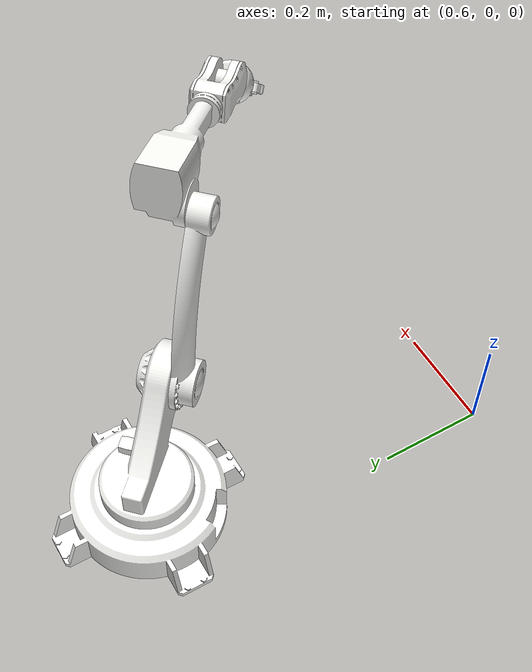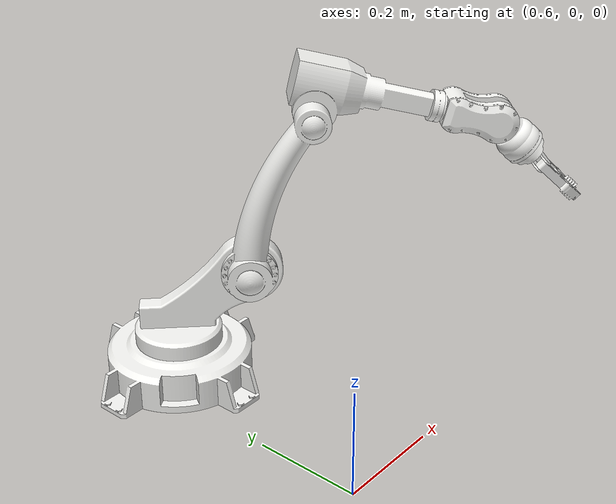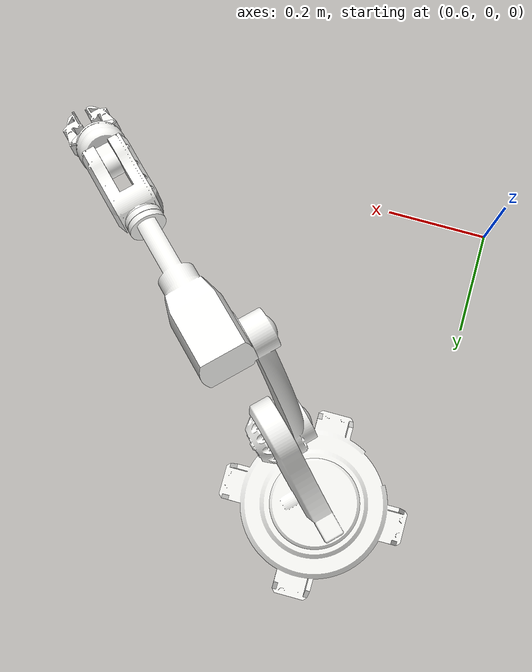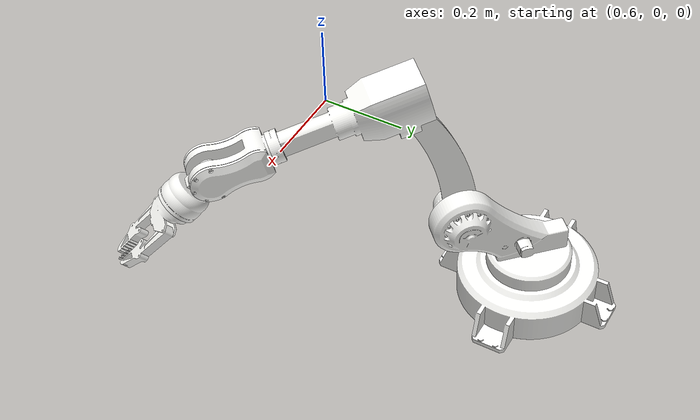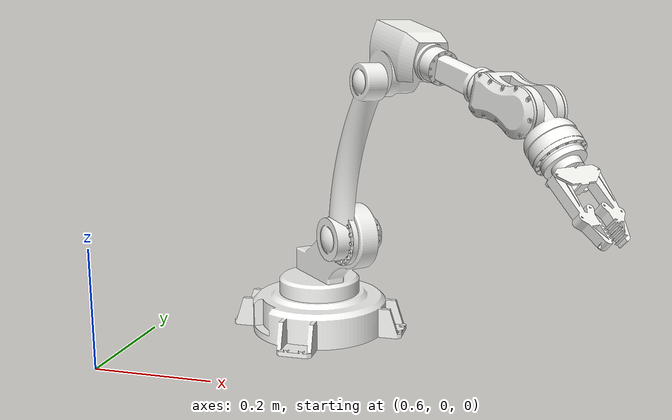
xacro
<?xml version="1.0"?>
<robot xmlns:xacro="http://www.ros.org/wiki/xacro" name="robotic_arm">

  <!-- Materials (shared across all assemblies) -->
  <material name="ABS_Plastic">
    <color rgba="0.965 0.965 0.953 1.0"/>
  </material>

  <!-- Assembly includes -->
  <xacro:include filename="$(find robotic_arm_description)/urdf/assemblies/robotic_arm.urdf.xacro"/>

  <!-- Instantiate assemblies -->
  <xacro:robotic_arm prefix=""/>

</robot>

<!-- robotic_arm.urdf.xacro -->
<robot xmlns:xacro="http://www.ros.org/wiki/xacro" name="robotic_arm_macro">

  <xacro:macro name="robotic_arm" params="prefix">

    <!-- Links -->
    <link name="${prefix}base_link">
      <inertial>
        <origin xyz="0.795447 0.614307 -0.087295" rpy="0 0 0"/>
        <mass value="6.119698"/>
        <inertia ixx="3.870592e-02" ixy="8.476438e-04" ixz="-4.377918e-05"
                 iyy="3.870592e-02" iyz="-4.377918e-05" izz="7.067362e-02"/>
      </inertial>
      <visual>
        <origin xyz="0.000000 0.000000 0.000000" rpy="0 0 0"/>
        <geometry>
          <mesh filename="package://robotic_arm_description/meshes/robotic_arm/base_link.dae" scale="1 1 1"/>
        </geometry>
        <material name="ABS_Plastic"/>
      </visual>
      <collision>
        <origin xyz="0.000000 0.000000 0.000000" rpy="0 0 0"/>
        <geometry>
          <mesh filename="package://robotic_arm_description/meshes/robotic_arm/base_link_collision.stl" scale="0.01 0.01 0.01"/>
        </geometry>
      </collision>
    </link>

    <link name="${prefix}JAW">
      <inertial>
        <origin xyz="0.059058 0.084791 -0.003955" rpy="0 0 0"/>
        <mass value="2.532640"/>
        <inertia ixx="1.314744e-02" ixy="-1.001874e-02" ixz="6.590987e-04"
                 iyy="1.786158e-02" iyz="5.945330e-04" izz="2.615029e-02"/>
      </inertial>
      <visual>
        <origin xyz="-0.418682 -0.888702 -0.224715" rpy="0 0 0"/>
        <geometry>
          <mesh filename="package://robotic_arm_description/meshes/robotic_arm/JAW.dae" scale="1 1 1"/>
        </geometry>
        <material name="ABS_Plastic"/>
      </visual>
      <collision>
        <origin xyz="-0.418682 -0.888702 -0.224715" rpy="0 0 0"/>
        <geometry>
          <mesh filename="package://robotic_arm_description/meshes/robotic_arm/JAW_collision.stl" scale="0.01 0.01 0.01"/>
        </geometry>
      </collision>
    </link>

    <link name="${prefix}JAW_2">
      <inertial>
        <origin xyz="-0.147018 -0.011210 0.016599" rpy="0 0 0"/>
        <mass value="1.025094"/>
        <inertia ixx="7.003861e-04" ixy="-2.973266e-04" ixz="-1.025022e-05"
                 iyy="1.951474e-02" iyz="-2.693467e-05" izz="1.990601e-02"/>
      </inertial>
      <visual>
        <origin xyz="-1.200000 -0.000000 -0.000000" rpy="0 0 0"/>
        <geometry>
          <mesh filename="package://robotic_arm_description/meshes/robotic_arm/JAW_2.dae" scale="1 1 1"/>
        </geometry>
        <material name="ABS_Plastic"/>
      </visual>
      <collision>
        <origin xyz="-1.200000 -0.000000 -0.000000" rpy="0 0 0"/>
        <geometry>
          <mesh filename="package://robotic_arm_description/meshes/robotic_arm/JAW_2_collision.stl" scale="0.01 0.01 0.01"/>
        </geometry>
      </collision>
    </link>

    <link name="${prefix}JAW_3">
      <inertial>
        <origin xyz="0.046361 -0.044012 0.039243" rpy="0 0 0"/>
        <mass value="1.538177"/>
        <inertia ixx="9.058945e-03" ixy="1.109815e-04" ixz="-1.328284e-04"
                 iyy="2.055125e-03" iyz="3.897745e-04" izz="8.638996e-03"/>
      </inertial>
      <visual>
        <origin xyz="0.048000 -0.650000 0.045000" rpy="0 0 0"/>
        <geometry>
          <mesh filename="package://robotic_arm_description/meshes/robotic_arm/JAW_3.dae" scale="1 1 1"/>
        </geometry>
        <material name="ABS_Plastic"/>
      </visual>
      <collision>
        <origin xyz="0.048000 -0.650000 0.045000" rpy="0 0 0"/>
        <geometry>
          <mesh filename="package://robotic_arm_description/meshes/robotic_arm/JAW_3_collision.stl" scale="0.01 0.01 0.01"/>
        </geometry>
      </collision>
    </link>

    <link name="${prefix}JAW_4">
      <inertial>
        <origin xyz="-0.000029 0.069514 -0.000000" rpy="0 0 0"/>
        <mass value="0.617822"/>
        <inertia ixx="1.472032e-03" ixy="-3.575882e-07" ixz="-5.823409e-11"
                 iyy="6.025998e-04" iyz="-2.335244e-09" izz="1.633041e-03"/>
      </inertial>
      <visual>
        <origin xyz="-0.500000 0.000000 0.000000" rpy="0 0 0"/>
        <geometry>
          <mesh filename="package://robotic_arm_description/meshes/robotic_arm/JAW_4.dae" scale="1 1 1"/>
        </geometry>
        <material name="ABS_Plastic"/>
      </visual>
      <collision>
        <origin xyz="-0.500000 0.000000 0.000000" rpy="0 0 0"/>
        <geometry>
          <mesh filename="package://robotic_arm_description/meshes/robotic_arm/JAW_4_collision.stl" scale="0.01 0.01 0.01"/>
        </geometry>
      </collision>
    </link>

    <link name="${prefix}JAW_5">
      <inertial>
        <origin xyz="0.058831 0.021840 -0.000000" rpy="0 0 0"/>
        <mass value="0.354722"/>
        <inertia ixx="2.554987e-04" ixy="-3.330502e-06" ixz="-4.770490e-18"
                 iyy="3.739993e-04" iyz="-6.572976e-19" izz="3.704189e-04"/>
      </inertial>
      <visual>
        <origin xyz="0.042000 0.022000 -0.600000" rpy="0 0 0"/>
        <geometry>
          <mesh filename="package://robotic_arm_description/meshes/robotic_arm/JAW_5.dae" scale="1 1 1"/>
        </geometry>
        <material name="ABS_Plastic"/>
      </visual>
      <collision>
        <origin xyz="0.042000 0.022000 -0.600000" rpy="0 0 0"/>
        <geometry>
          <mesh filename="package://robotic_arm_description/meshes/robotic_arm/JAW_5_collision.stl" scale="0.01 0.01 0.01"/>
        </geometry>
      </collision>
    </link>

    <link name="${prefix}JAW_6">
      <inertial>
        <origin xyz="0.000000 0.016350 0.000000" rpy="0 0 0"/>
        <mass value="0.081068"/>
        <inertia ixx="3.412891e-05" ixy="2.168046e-15" ixz="4.820322e-20"
                 iyy="4.256513e-05" iyz="-8.224378e-21" izz="4.058668e-05"/>
      </inertial>
      <visual>
        <origin xyz="0.000000 0.000000 0.000000" rpy="0 0 0"/>
        <geometry>
          <mesh filename="package://robotic_arm_description/meshes/robotic_arm/JAW_6.dae" scale="1 1 1"/>
        </geometry>
        <material name="ABS_Plastic"/>
      </visual>
      <collision>
        <origin xyz="0.000000 0.000000 0.000000" rpy="0 0 0"/>
        <geometry>
          <mesh filename="package://robotic_arm_description/meshes/robotic_arm/JAW_6_collision.stl" scale="0.01 0.01 0.01"/>
        </geometry>
      </collision>
    </link>

    <link name="${prefix}JAW_7">
      <inertial>
        <origin xyz="0.008937 0.012769 -0.052878" rpy="0 0 0"/>
        <mass value="0.041524"/>
        <inertia ixx="4.990394e-05" ixy="5.252600e-08" ixz="-1.089245e-07"
                 iyy="4.782931e-05" iyz="6.734330e-06" izz="4.334183e-06"/>
      </inertial>
      <visual>
        <origin xyz="0.009000 -0.014591 0.102853" rpy="0 0 0"/>
        <geometry>
          <mesh filename="package://robotic_arm_description/meshes/robotic_arm/JAW_7.dae" scale="1 1 1"/>
        </geometry>
        <material name="ABS_Plastic"/>
      </visual>
      <collision>
        <origin xyz="0.009000 -0.014591 0.102853" rpy="0 0 0"/>
        <geometry>
          <mesh filename="package://robotic_arm_description/meshes/robotic_arm/JAW_7_collision.stl" scale="0.01 0.01 0.01"/>
        </geometry>
      </collision>
    </link>

    <link name="${prefix}JAW_8">
      <inertial>
        <origin xyz="-0.009063 0.012769 -0.052878" rpy="0 0 0"/>
        <mass value="0.041524"/>
        <inertia ixx="4.990394e-05" ixy="5.252600e-08" ixz="-1.089245e-07"
                 iyy="4.782931e-05" iyz="6.734330e-06" izz="4.334183e-06"/>
      </inertial>
      <visual>
        <origin xyz="-0.703237 -1.331835 -0.607276" rpy="0 0 0"/>
        <geometry>
          <mesh filename="package://robotic_arm_description/meshes/robotic_arm/JAW_8.dae" scale="1 1 1"/>
        </geometry>
        <material name="ABS_Plastic"/>
      </visual>
      <collision>
        <origin xyz="-0.703237 -1.331835 -0.607276" rpy="0 0 0"/>
        <geometry>
          <mesh filename="package://robotic_arm_description/meshes/robotic_arm/JAW_8_collision.stl" scale="0.01 0.01 0.01"/>
        </geometry>
      </collision>
    </link>

    <!-- Joints (internal to assembly) -->
    <joint name="${prefix}Revolute_1" type="revolute">
      <parent link="${prefix}base_link"/>
      <child link="${prefix}JAW"/>
      <origin xyz="0.794021 0.612882 -0.042003" rpy="1.570796 -0.000000 -0.788864"/>
      <axis xyz="-0.000000 -1.000000 -0.000000"/>
      <limit lower="0.000000" upper="6.283185" effort="100.0" velocity="1.00"/>
    </joint>

    <joint name="${prefix}Revolute_2" type="continuous">
      <parent link="${prefix}JAW"/>
      <child link="${prefix}JAW_2"/>
      <origin xyz="0.150000 0.160000 0.020000" rpy="-0.000000 -0.000000 -1.939557"/>
      <axis xyz="-0.000000 0.000000 -1.000000"/>
      <limit effort="100.0" velocity="1.00"/>
    </joint>

    <joint name="${prefix}Revolute_3" type="continuous">
      <parent link="${prefix}JAW_2"/>
      <child link="${prefix}JAW_3"/>
      <origin xyz="-0.365000 0.000000 -0.000000" rpy="3.014035 1.570796 0.000000"/>
      <axis xyz="-1.000000 0.000000 -0.000000"/>
      <limit effort="100.0" velocity="1.00"/>
    </joint>

    <joint name="${prefix}Revolute_4" type="revolute">
      <parent link="${prefix}JAW_3"/>
      <child link="${prefix}JAW_4"/>
      <origin xyz="0.048000 -0.246000 0.045000" rpy="0.000000 0.000000 3.141593"/>
      <axis xyz="0.000000 -1.000000 0.000000"/>
      <limit lower="0.000000" upper="0.000000" effort="100.0" velocity="1.00"/>
    </joint>

    <joint name="${prefix}Revolute_5" type="continuous">
      <parent link="${prefix}JAW_4"/>
      <child link="${prefix}JAW_5"/>
      <origin xyz="0.022000 0.115000 -0.000000" rpy="0.000000 0.523599 1.570796"/>
      <axis xyz="-0.000000 -1.000000 -0.000000"/>
      <limit effort="100.0" velocity="1.00"/>
    </joint>

    <joint name="${prefix}Revolute_6" type="revolute">
      <parent link="${prefix}JAW_5"/>
      <child link="${prefix}JAW_6"/>
      <origin xyz="0.094000 0.022000 0.000000" rpy="-0.000000 0.000000 -1.570796"/>
      <axis xyz="0.000000 -1.000000 0.000000"/>
      <limit lower="0.000000" upper="0.000000" effort="100.0" velocity="1.00"/>
    </joint>

    <joint name="${prefix}Revolute_7" type="continuous">
      <parent link="${prefix}JAW_6"/>
      <child link="${prefix}JAW_7"/>
      <origin xyz="-0.042310 0.032892 0.009000" rpy="1.570796 1.570796 0.000000"/>
      <axis xyz="-1.000000 -0.000000 -0.000000"/>
      <limit effort="100.0" velocity="1.00"/>
    </joint>

    <joint name="${prefix}Revolute_8" type="continuous">
      <parent link="${prefix}JAW_6"/>
      <child link="${prefix}JAW_8"/>
      <origin xyz="0.040810 0.032892 0.009000" rpy="1.570796 -1.570796 0.000000"/>
      <axis xyz="1.000000 0.000000 0.000000"/>
      <limit effort="100.0" velocity="1.00"/>
    </joint>

    <!-- ROS 2 control: generated generic system -->
    <ros2_control name="${prefix}robotic_arm_system" type="system">
      <hardware>
        <plugin>mock_components/GenericSystem</plugin>
        <param name="cmd_topic">sim/robotic_arm_system/cmd</param>
        <param name="state_topic">sim/robotic_arm_system/state</param>
      </hardware>

      <joint name="${prefix}Revolute_1">
        <command_interface name="position"/>
        <command_interface name="velocity"/>
        <state_interface name="position">
          <param name="initial_value">0.0</param>
        </state_interface>
        <state_interface name="velocity"/>
        <state_interface name="effort"/>
      </joint>
      <joint name="${prefix}Revolute_2">
        <command_interface name="position"/>
        <command_interface name="velocity"/>
        <state_interface name="position">
          <param name="initial_value">0.0</param>
        </state_interface>
        <state_interface name="velocity"/>
        <state_interface name="effort"/>
      </joint>
      <joint name="${prefix}Revolute_3">
        <command_interface name="position"/>
        <command_interface name="velocity"/>
        <state_interface name="position">
          <param name="initial_value">0.0</param>
        </state_interface>
        <state_interface name="velocity"/>
        <state_interface name="effort"/>
      </joint>
      <joint name="${prefix}Revolute_4">
        <command_interface name="position"/>
        <command_interface name="velocity"/>
        <state_interface name="position">
          <param name="initial_value">0.0</param>
        </state_interface>
        <state_interface name="velocity"/>
        <state_interface name="effort"/>
      </joint>
      <joint name="${prefix}Revolute_5">
        <command_interface name="position"/>
        <command_interface name="velocity"/>
        <state_interface name="position">
          <param name="initial_value">0.0</param>
        </state_interface>
        <state_interface name="velocity"/>
        <state_interface name="effort"/>
      </joint>
      <joint name="${prefix}Revolute_6">
        <command_interface name="position"/>
        <command_interface name="velocity"/>
        <state_interface name="position">
          <param name="initial_value">0.0</param>
        </state_interface>
        <state_interface name="velocity"/>
        <state_interface name="effort"/>
      </joint>
      <joint name="${prefix}Revolute_7">
        <command_interface name="position"/>
        <command_interface name="velocity"/>
        <state_interface name="position">
          <param name="initial_value">0.0</param>
        </state_interface>
        <state_interface name="velocity"/>
        <state_interface name="effort"/>
      </joint>
      <joint name="${prefix}Revolute_8">
        <command_interface name="position"/>
        <command_interface name="velocity"/>
        <state_interface name="position">
          <param name="initial_value">0.0</param>
        </state_interface>
        <state_interface name="velocity"/>
        <state_interface name="effort"/>
      </joint>
    </ros2_control>

  </xacro:macro>

</robot>
